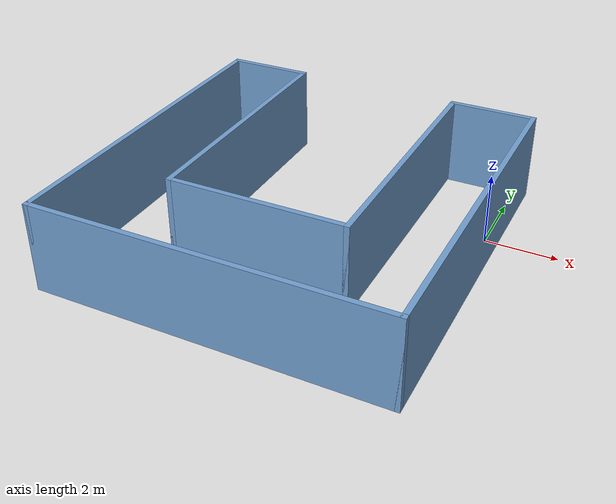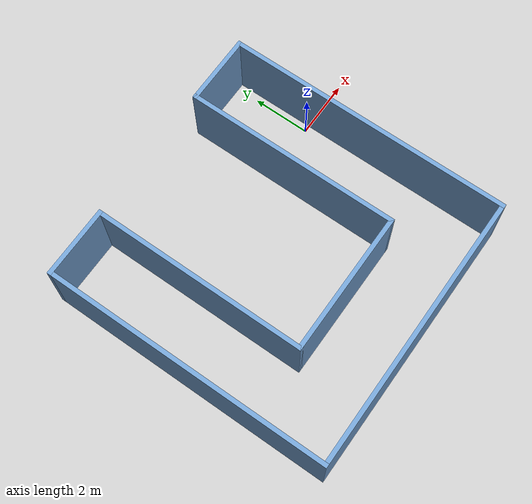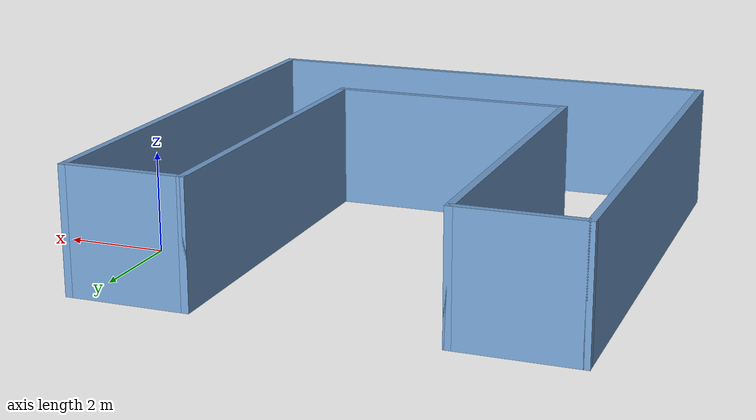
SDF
<?xml version='1.0'?>
<sdf version='1.6'>
  <model name='mybuilding'>
    <pose frame=''>-4.49066 -2.07513 0 0 -0 0</pose>
    <link name='Wall_48'>
      <collision name='Wall_48_Collision'>
        <geometry>
          <box>
            <size>2.5 0.15 2.5</size>
          </box>
        </geometry>
        <pose frame=''>0 0 1.25 0 -0 0</pose>
      </collision>
      <visual name='Wall_48_Visual'>
        <pose frame=''>0 0 1.25 0 -0 0</pose>
        <geometry>
          <box>
            <size>2.5 0.15 2.5</size>
          </box>
        </geometry>
        <material>
          <script>
            <uri>file://media/materials/scripts/gazebo.material</uri>
            <name>Gazebo/Grey</name>
          </script>
          <ambient>0.447059 0.623529 0.811765 1</ambient>
        </material>
        <meta>
          <layer>0</layer>
        </meta>
      </visual>
      <pose frame=''>-3.6 4.925 0 0 -0 0</pose>
    </link>
    <link name='Wall_49'>
      <collision name='Wall_49_Collision'>
        <geometry>
          <box>
            <size>7.5 0.15 2.5</size>
          </box>
        </geometry>
        <pose frame=''>0 0 1.25 0 -0 0</pose>
      </collision>
      <visual name='Wall_49_Visual'>
        <pose frame=''>0 0 1.25 0 -0 0</pose>
        <geometry>
          <box>
            <size>7.5 0.15 2.5</size>
          </box>
        </geometry>
        <material>
          <script>
            <uri>file://media/materials/scripts/gazebo.material</uri>
            <name>Gazebo/Grey</name>
          </script>
          <ambient>0.447059 0.623529 0.811765 1</ambient>
        </material>
        <meta>
          <layer>0</layer>
        </meta>
      </visual>
      <pose frame=''>-2.425 1.25 0 0 -0 -1.5708</pose>
    </link>
    <link name='Wall_50'>
      <collision name='Wall_50_Collision'>
        <geometry>
          <box>
            <size>5 0.15 2.5</size>
          </box>
        </geometry>
        <pose frame=''>0 0 1.25 0 -0 0</pose>
      </collision>
      <visual name='Wall_50_Visual'>
        <pose frame=''>0 0 1.25 0 -0 0</pose>
        <geometry>
          <box>
            <size>5 0.15 2.5</size>
          </box>
        </geometry>
        <material>
          <script>
            <uri>file://media/materials/scripts/gazebo.material</uri>
            <name>Gazebo/Grey</name>
          </script>
          <ambient>0.447059 0.623529 0.811765 1</ambient>
        </material>
        <meta>
          <layer>0</layer>
        </meta>
      </visual>
      <pose frame=''>0 -2.425 0 0 -0 0</pose>
    </link>
    <link name='Wall_51'>
      <collision name='Wall_51_Collision'>
        <geometry>
          <box>
            <size>7.5 0.15 2.5</size>
          </box>
        </geometry>
        <pose frame=''>0 0 1.25 0 -0 0</pose>
      </collision>
      <visual name='Wall_51_Visual'>
        <pose frame=''>0 0 1.25 0 -0 0</pose>
        <geometry>
          <box>
            <size>7.5 0.15 2.5</size>
          </box>
        </geometry>
        <material>
          <script>
            <uri>file://media/materials/scripts/gazebo.material</uri>
            <name>Gazebo/Grey</name>
          </script>
          <ambient>0.447059 0.623529 0.811765 1</ambient>
        </material>
        <meta>
          <layer>0</layer>
        </meta>
      </visual>
      <pose frame=''>2.425 1.25 0 0 -0 1.5708</pose>
    </link>
    <link name='Wall_52'>
      <collision name='Wall_52_Collision'>
        <geometry>
          <box>
            <size>2.5 0.15 2.5</size>
          </box>
        </geometry>
        <pose frame=''>0 0 1.25 0 -0 0</pose>
      </collision>
      <visual name='Wall_52_Visual'>
        <pose frame=''>0 0 1.25 0 -0 0</pose>
        <geometry>
          <box>
            <size>2.5 0.15 2.5</size>
          </box>
        </geometry>
        <material>
          <script>
            <uri>file://media/materials/scripts/gazebo.material</uri>
            <name>Gazebo/Grey</name>
          </script>
          <ambient>0.447059 0.623529 0.811765 1</ambient>
        </material>
        <meta>
          <layer>0</layer>
        </meta>
      </visual>
      <pose frame=''>3.6 4.925 0 0 -0 0</pose>
    </link>
    <link name='Wall_53'>
      <collision name='Wall_53_Collision'>
        <geometry>
          <box>
            <size>10 0.15 2.5</size>
          </box>
        </geometry>
        <pose frame=''>0 0 1.25 0 -0 0</pose>
      </collision>
      <visual name='Wall_53_Visual'>
        <pose frame=''>0 0 1.25 0 -0 0</pose>
        <geometry>
          <box>
            <size>10 0.15 2.5</size>
          </box>
        </geometry>
        <material>
          <script>
            <uri>file://media/materials/scripts/gazebo.material</uri>
            <name>Gazebo/Grey</name>
          </script>
          <ambient>0.447059 0.623529 0.811765 1</ambient>
        </material>
        <meta>
          <layer>0</layer>
        </meta>
      </visual>
      <pose frame=''>4.775 0 0 0 -0 -1.5708</pose>
    </link>
    <link name='Wall_58'>
      <collision name='Wall_58_Collision'>
        <geometry>
          <box>
            <size>10 0.15 2.5</size>
          </box>
        </geometry>
        <pose frame=''>0 0 1.25 0 -0 0</pose>
      </collision>
      <visual name='Wall_58_Visual'>
        <pose frame=''>0 0 1.25 0 -0 0</pose>
        <geometry>
          <box>
            <size>10 0.15 2.5</size>
          </box>
        </geometry>
        <material>
          <script>
            <uri>file://media/materials/scripts/gazebo.material</uri>
            <name>Gazebo/Grey</name>
          </script>
          <ambient>0.447059 0.623529 0.811765 1</ambient>
        </material>
        <meta>
          <layer>0</layer>
        </meta>
      </visual>
      <pose frame=''>-4.775 0 0 0 -0 -1.5708</pose>
    </link>
    <link name='Wall_59'>
      <collision name='Wall_59_Collision'>
        <geometry>
          <box>
            <size>9.7 0.15 2.5</size>
          </box>
        </geometry>
        <pose frame=''>0 0 1.25 0 -0 0</pose>
      </collision>
      <visual name='Wall_59_Visual'>
        <pose frame=''>0 0 1.25 0 -0 0</pose>
        <geometry>
          <box>
            <size>9.7 0.15 2.5</size>
          </box>
        </geometry>
        <material>
          <script>
            <uri>file://media/materials/scripts/gazebo.material</uri>
            <name>Gazebo/Grey</name>
          </script>
          <ambient>0.447059 0.623529 0.811765 1</ambient>
        </material>
        <meta>
          <layer>0</layer>
        </meta>
      </visual>
      <pose frame=''>0 -4.925 0 0 -0 0</pose>
    </link>
    <static>1</static>
  </model>
</sdf>
